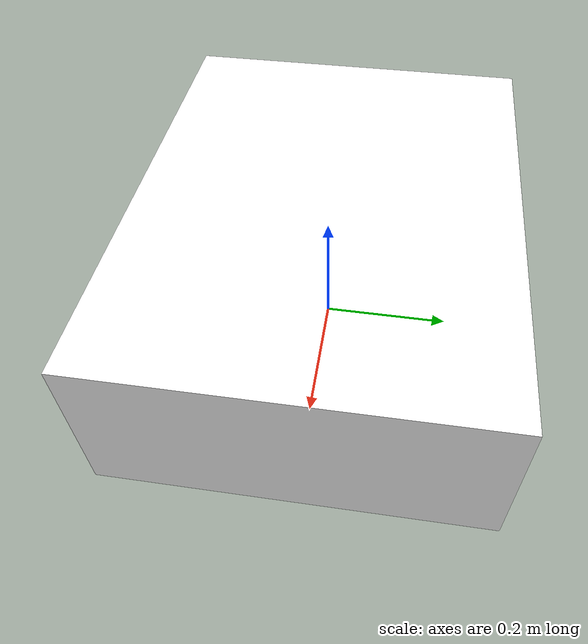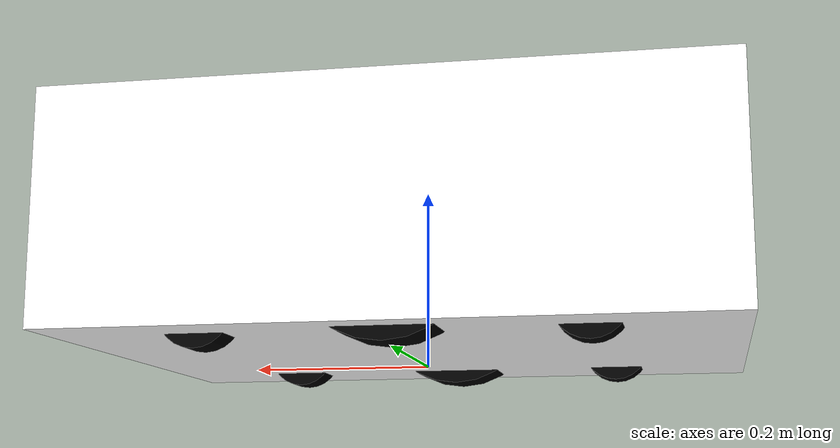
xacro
<?xml version="1.0"?>
<robot xmlns:xacro="http://www.ros.org/wiki/xacro" name="lebai_lm3">
<!--link-->
  <link name="base_link">
      <visual>
        <origin xyz="0 0 0.14" rpy="0 0 0" />
        <geometry>
          <box size="0.71 0.56 0.25"/>
        </geometry>
    	 <material name="white">
                <color rgba="1 1 1 1"/>
        </material>
      </visual>
  </link>
  <link name="left_wheel_link">
      <visual>
        <origin xyz="0 0 0" rpy="0 0 0" />
            <geometry>
                <cylinder radius="0.1" length = "0.06"/>
            </geometry>
            <material name="black">
                <color rgba="0 0 0 1"/>
            </material>
        </visual>
    </link>
    <link name="right_wheel_link">
        <visual>
            <origin xyz="0 0 0" rpy="0 0 0" />
            <geometry>
                <cylinder radius="0.1" length = "0.06"/>
            </geometry>
            <material name="black">
                <color rgba="0 0 0 1"/>
            </material>
        </visual>
    </link>
    <link name="left_front_link">
        <visual>
            <origin xyz="0 0 0" rpy="0 0 0" />
            <geometry>
                <cylinder radius="0.04" length = "0.04"/>
            </geometry>
            <material name="black">
                <color rgba="0 0 0 1"/>
            </material>
        </visual>
    </link>
    <link name="right_front_link">
        <visual>
            <origin xyz="0 0 0" rpy="0 0 0" />
            <geometry>
                <cylinder radius="0.04" length = "0.04"/>
            </geometry>
            <material name="black">
                <color rgba="0 0 0 1"/>
            </material>
        </visual>
    </link>
    <link name="left_back_link">
        <visual>
            <origin xyz="0 0 0" rpy="0 0 0" />
            <geometry>
                <cylinder radius="0.04" length = "0.04"/>
            </geometry>
            <material name="black">
                <color rgba="0 0 0 1"/>
            </material>
        </visual>
    </link>
    <link name="right_back_link">
        <visual>
            <origin xyz="0 0 0" rpy="0 0 0" />
            <geometry>
                <cylinder radius="0.04" length = "0.04"/>
            </geometry>
            <material name="black">
                <color rgba="0 0 0 1"/>
            </material>
        </visual>
    </link>
<!--joint-->
    -->
    <joint name="left_wheel_joint" type="fixed">
        <origin xyz="0 0.214 0.1" rpy="1.57 0 0"/>
        <parent link="base_link"/>
        <child link="left_wheel_link"/>
    </joint>
    <joint name="right_wheel_joint" type="fixed">
        <origin xyz="0 -0.214 0.1" rpy="1.57 0 0"/>
        <parent link="base_link"/>
        <child link="right_wheel_link"/>
    </joint>
    <joint name="left_front_joint" type="fixed">
        <origin xyz="0.2 0.2 0.04" rpy="1.57 0 0"/>
        <parent link="base_link"/>
        <child link="left_front_link"/>
    </joint>
    <joint name="right_front_joint" type="fixed">
        <origin xyz="0.2 -0.2 0.04" rpy="1.57 0 0"/>
        <parent link="base_link"/>
        <child link="right_front_link"/>
    </joint>
    <joint name="left_back_joint" type="fixed">
        <origin xyz="-0.2 0.2 0.04" rpy="1.57 0 0"/>
        <parent link="base_link"/>
        <child link="left_back_link"/>
    </joint>
    <joint name="right_back_joint" type="fixed">
        <origin xyz="-0.2 -0.2 0.04" rpy="1.57 0 0"/>
        <parent link="base_link"/>
        <child link="right_back_link"/>
    </joint>
</robot>
